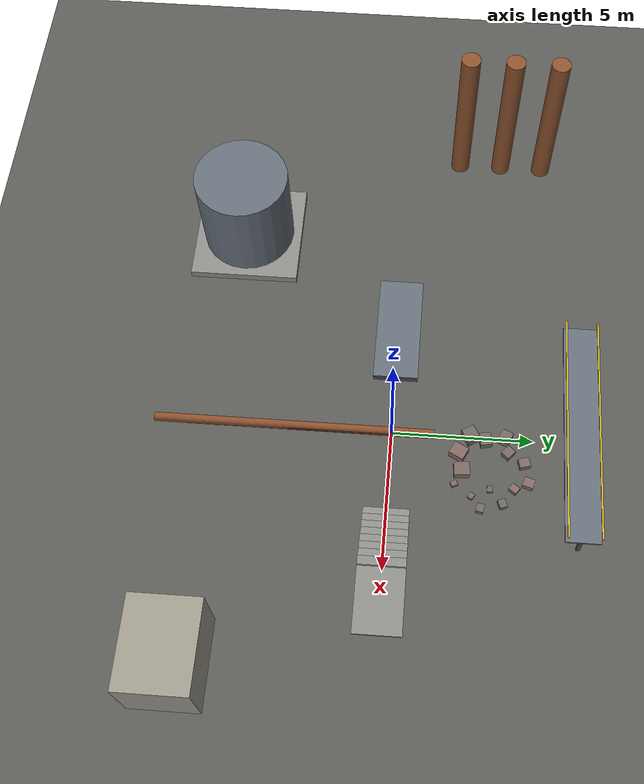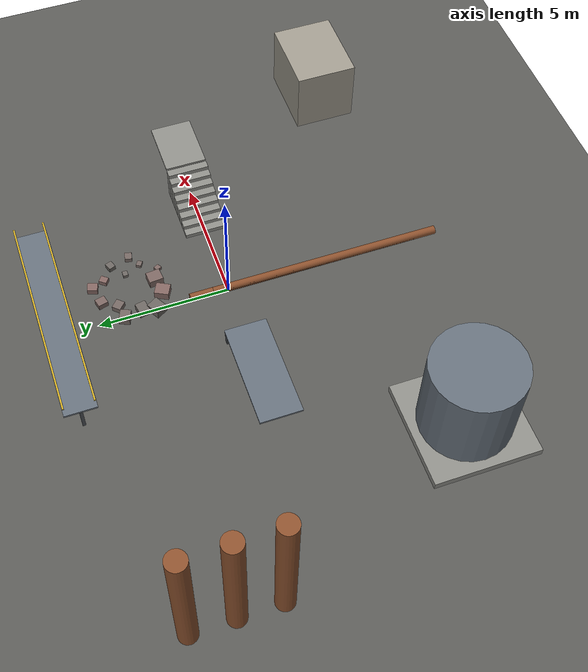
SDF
<?xml version="1.0" encoding="UTF-8"?>
<sdf version="1.9">
  <world name="agr_inspection">
    <plugin filename="gz-sim-physics-system" name="gz::sim::systems::Physics"/>
    <plugin filename="gz-sim-user-commands-system" name="gz::sim::systems::UserCommands"/>
    <plugin filename="gz-sim-scene-broadcaster-system" name="gz::sim::systems::SceneBroadcaster"/>
    <plugin filename="gz-sim-contact-system" name="gz::sim::systems::Contact"/>
    <plugin filename="gz-sim-imu-system" name="gz::sim::systems::Imu"/>
    <plugin filename="gz-sim-sensors-system" name="gz::sim::systems::Sensors">
      <render_engine>ogre2</render_engine>
    </plugin>

    <physics type="ode">
      <max_step_size>0.002</max_step_size>
      <real_time_factor>1.0</real_time_factor>
      <real_time_update_rate>500</real_time_update_rate>
    </physics>
    <gravity>0 0 -9.8</gravity>
    <scene>
      <grid>false</grid><shadows>true</shadows>
      <ambient>0.5 0.5 0.5 1</ambient><background>0.62 0.66 0.72 1</background>
    </scene>
    <model name="ground_plane"><static>true</static><link name="link">
      <collision name="c"><geometry><plane><normal>0 0 1</normal><size>1 1</size></plane></geometry>
        <surface><friction><ode><mu>1.0</mu><mu2>1.0</mu2></ode></friction></surface></collision>
      <visual name="v"><geometry><plane><normal>0 0 1</normal><size>200 200</size></plane></geometry>
        <material><ambient>0.35 0.35 0.34 1</ambient><diffuse>0.35 0.35 0.34 1</diffuse></material></visual>
    </link></model>
    <light name="sunUTC" type="directional">
      <pose>0 0 60 0 0 0</pose><cast_shadows>true</cast_shadows><intensity>1</intensity>
      <direction>0.3 0.5 -0.8</direction>
      <diffuse>0.95 0.95 0.92 1</diffuse><specular>0.25 0.25 0.25 1</specular>
      <attenuation><range>500</range><linear>0</linear><constant>1</constant><quadratic>0</quadratic></attenuation>
      <spot><inner_angle>0</inner_angle><outer_angle>0</outer_angle><falloff>0</falloff></spot>
    </light>
    <spherical_coordinates>
      <surface_model>EARTH_WGS84</surface_model><world_frame_orientation>ENU</world_frame_orientation>
      <latitude_deg>24.6877</latitude_deg><longitude_deg>46.7219</longitude_deg><elevation>600</elevation>
    </spherical_coordinates>
    <model name="step_0">
      <static>true</static>
      <pose>3.000 0.000 0.085 0 0 0.0000</pose>
      <link name="link">
        <collision name="c"><geometry><box><size>0.3 1.6 0.17</size></box></geometry>
          <surface><friction><ode><mu>1.0</mu><mu2>1.0</mu2></ode></friction></surface>
        </collision>
        <visual name="v"><geometry><box><size>0.3 1.6 0.17</size></box></geometry>
          <material><ambient>0.55 0.55 0.53 1</ambient><diffuse>0.55 0.55 0.53 1</diffuse></material>
        </visual>
      </link>
    </model>
    <model name="step_1">
      <static>true</static>
      <pose>3.300 0.000 0.170 0 0 0.0000</pose>
      <link name="link">
        <collision name="c"><geometry><box><size>0.3 1.6 0.34</size></box></geometry>
          <surface><friction><ode><mu>1.0</mu><mu2>1.0</mu2></ode></friction></surface>
        </collision>
        <visual name="v"><geometry><box><size>0.3 1.6 0.34</size></box></geometry>
          <material><ambient>0.55 0.55 0.53 1</ambient><diffuse>0.55 0.55 0.53 1</diffuse></material>
        </visual>
      </link>
    </model>
    <model name="step_2">
      <static>true</static>
      <pose>3.600 0.000 0.255 0 0 0.0000</pose>
      <link name="link">
        <collision name="c"><geometry><box><size>0.3 1.6 0.51</size></box></geometry>
          <surface><friction><ode><mu>1.0</mu><mu2>1.0</mu2></ode></friction></surface>
        </collision>
        <visual name="v"><geometry><box><size>0.3 1.6 0.51</size></box></geometry>
          <material><ambient>0.55 0.55 0.53 1</ambient><diffuse>0.55 0.55 0.53 1</diffuse></material>
        </visual>
      </link>
    </model>
    <model name="step_3">
      <static>true</static>
      <pose>3.900 0.000 0.340 0 0 0.0000</pose>
      <link name="link">
        <collision name="c"><geometry><box><size>0.3 1.6 0.68</size></box></geometry>
          <surface><friction><ode><mu>1.0</mu><mu2>1.0</mu2></ode></friction></surface>
        </collision>
        <visual name="v"><geometry><box><size>0.3 1.6 0.68</size></box></geometry>
          <material><ambient>0.55 0.55 0.53 1</ambient><diffuse>0.55 0.55 0.53 1</diffuse></material>
        </visual>
      </link>
    </model>
    <model name="step_4">
      <static>true</static>
      <pose>4.200 0.000 0.425 0 0 0.0000</pose>
      <link name="link">
        <collision name="c"><geometry><box><size>0.3 1.6 0.8500000000000001</size></box></geometry>
          <surface><friction><ode><mu>1.0</mu><mu2>1.0</mu2></ode></friction></surface>
        </collision>
        <visual name="v"><geometry><box><size>0.3 1.6 0.8500000000000001</size></box></geometry>
          <material><ambient>0.55 0.55 0.53 1</ambient><diffuse>0.55 0.55 0.53 1</diffuse></material>
        </visual>
      </link>
    </model>
    <model name="step_5">
      <static>true</static>
      <pose>4.500 0.000 0.510 0 0 0.0000</pose>
      <link name="link">
        <collision name="c"><geometry><box><size>0.3 1.6 1.02</size></box></geometry>
          <surface><friction><ode><mu>1.0</mu><mu2>1.0</mu2></ode></friction></surface>
        </collision>
        <visual name="v"><geometry><box><size>0.3 1.6 1.02</size></box></geometry>
          <material><ambient>0.55 0.55 0.53 1</ambient><diffuse>0.55 0.55 0.53 1</diffuse></material>
        </visual>
      </link>
    </model>
    <model name="step_6">
      <static>true</static>
      <pose>4.800 0.000 0.595 0 0 0.0000</pose>
      <link name="link">
        <collision name="c"><geometry><box><size>0.3 1.6 1.1900000000000002</size></box></geometry>
          <surface><friction><ode><mu>1.0</mu><mu2>1.0</mu2></ode></friction></surface>
        </collision>
        <visual name="v"><geometry><box><size>0.3 1.6 1.1900000000000002</size></box></geometry>
          <material><ambient>0.55 0.55 0.53 1</ambient><diffuse>0.55 0.55 0.53 1</diffuse></material>
        </visual>
      </link>
    </model>
    <model name="step_7">
      <static>true</static>
      <pose>5.100 0.000 0.680 0 0 0.0000</pose>
      <link name="link">
        <collision name="c"><geometry><box><size>0.3 1.6 1.36</size></box></geometry>
          <surface><friction><ode><mu>1.0</mu><mu2>1.0</mu2></ode></friction></surface>
        </collision>
        <visual name="v"><geometry><box><size>0.3 1.6 1.36</size></box></geometry>
          <material><ambient>0.55 0.55 0.53 1</ambient><diffuse>0.55 0.55 0.53 1</diffuse></material>
        </visual>
      </link>
    </model>
    <model name="landing">
      <static>true</static>
      <pose>6.400 0.000 1.360 0 0 0.0000</pose>
      <link name="link">
        <collision name="c"><geometry><box><size>2.2 1.6 0.08</size></box></geometry>
          <surface><friction><ode><mu>1.0</mu><mu2>1.0</mu2></ode></friction></surface>
        </collision>
        <visual name="v"><geometry><box><size>2.2 1.6 0.08</size></box></geometry>
          <material><ambient>0.55 0.55 0.53 1</ambient><diffuse>0.55 0.55 0.53 1</diffuse></material>
        </visual>
      </link>
    </model>
    <model name="ramp">
      <static>true</static>
      <pose>-4.000 0.000 0.450 0 0 0.0000</pose>
      <link name="link">
        <collision name="c"><geometry><box><size>4.0 1.6 0.08</size></box></geometry>
          <surface><friction><ode><mu>1.0</mu><mu2>1.0</mu2></ode></friction></surface>
        </collision>
        <visual name="v"><geometry><box><size>4.0 1.6 0.08</size></box></geometry>
          <material><ambient>0.4 0.44 0.48 1</ambient><diffuse>0.4 0.44 0.48 1</diffuse></material>
        </visual>
      </link>
    </model>
    <model name="ramp_prop">
      <static>true</static>
      <pose>-2.200 0.000 0.220 0 0 0.0000</pose>
      <link name="link">
        <collision name="c"><geometry><box><size>0.2 1.6 0.45</size></box></geometry>
          <surface><friction><ode><mu>1.0</mu><mu2>1.0</mu2></ode></friction></surface>
        </collision>
        <visual name="v"><geometry><box><size>0.2 1.6 0.45</size></box></geometry>
          <material><ambient>0.28 0.3 0.32 1</ambient><diffuse>0.28 0.3 0.32 1</diffuse></material>
        </visual>
      </link>
    </model>
    <model name="rubble_0">
      <static>true</static>
      <pose>1.900 3.500 0.070 0 0 0.0000</pose>
      <link name="link">
        <collision name="c"><geometry><box><size>0.22400000000000003 0.196 0.14</size></box></geometry>
          <surface><friction><ode><mu>1.0</mu><mu2>1.0</mu2></ode></friction></surface>
        </collision>
        <visual name="v"><geometry><box><size>0.22400000000000003 0.196 0.14</size></box></geometry>
          <material><ambient>0.42 0.4 0.38 1</ambient><diffuse>0.42 0.4 0.38 1</diffuse></material>
        </visual>
      </link>
    </model>
    <model name="rubble_1">
      <static>true</static>
      <pose>0.529 4.115 0.120 0 0 2.4000</pose>
      <link name="link">
        <collision name="c"><geometry><box><size>0.38400000000000006 0.336 0.24000000000000002</size></box></geometry>
          <surface><friction><ode><mu>1.0</mu><mu2>1.0</mu2></ode></friction></surface>
        </collision>
        <visual name="v"><geometry><box><size>0.38400000000000006 0.336 0.24000000000000002</size></box></geometry>
          <material><ambient>0.44999999999999996 0.4 0.38 1</ambient><diffuse>0.44999999999999996 0.4 0.38 1</diffuse></material>
        </visual>
      </link>
    </model>
    <model name="rubble_2">
      <static>true</static>
      <pose>1.287 2.507 0.170 0 0 4.7999</pose>
      <link name="link">
        <collision name="c"><geometry><box><size>0.544 0.476 0.34</size></box></geometry>
          <surface><friction><ode><mu>1.0</mu><mu2>1.0</mu2></ode></friction></surface>
        </collision>
        <visual name="v"><geometry><box><size>0.544 0.476 0.34</size></box></geometry>
          <material><ambient>0.48 0.4 0.38 1</ambient><diffuse>0.48 0.4 0.38 1</diffuse></material>
        </visual>
      </link>
    </model>
    <model name="rubble_3">
      <static>true</static>
      <pose>1.847 4.344 0.095 0 0 7.1999</pose>
      <link name="link">
        <collision name="c"><geometry><box><size>0.30400000000000005 0.26599999999999996 0.19</size></box></geometry>
          <surface><friction><ode><mu>1.0</mu><mu2>1.0</mu2></ode></friction></surface>
        </collision>
        <visual name="v"><geometry><box><size>0.30400000000000005 0.26599999999999996 0.19</size></box></geometry>
          <material><ambient>0.51 0.4 0.38 1</ambient><diffuse>0.51 0.4 0.38 1</diffuse></material>
        </visual>
      </link>
    </model>
    <model name="rubble_4">
      <static>true</static>
      <pose>0.097 3.305 0.145 0 0 9.5999</pose>
      <link name="link">
        <collision name="c"><geometry><box><size>0.4640000000000001 0.406 0.29000000000000004</size></box></geometry>
          <surface><friction><ode><mu>1.0</mu><mu2>1.0</mu2></ode></friction></surface>
        </collision>
        <visual name="v"><geometry><box><size>0.4640000000000001 0.406 0.29000000000000004</size></box></geometry>
          <material><ambient>0.42 0.4 0.38 1</ambient><diffuse>0.42 0.4 0.38 1</diffuse></material>
        </visual>
      </link>
    </model>
    <model name="rubble_5">
      <static>true</static>
      <pose>2.187 2.872 0.070 0 0 11.9998</pose>
      <link name="link">
        <collision name="c"><geometry><box><size>0.22400000000000003 0.196 0.14</size></box></geometry>
          <surface><friction><ode><mu>1.0</mu><mu2>1.0</mu2></ode></friction></surface>
        </collision>
        <visual name="v"><geometry><box><size>0.22400000000000003 0.196 0.14</size></box></geometry>
          <material><ambient>0.44999999999999996 0.4 0.38 1</ambient><diffuse>0.44999999999999996 0.4 0.38 1</diffuse></material>
        </visual>
      </link>
    </model>
    <model name="rubble_6">
      <static>true</static>
      <pose>0.885 4.673 0.120 0 0 14.3998</pose>
      <link name="link">
        <collision name="c"><geometry><box><size>0.38400000000000006 0.336 0.24000000000000002</size></box></geometry>
          <surface><friction><ode><mu>1.0</mu><mu2>1.0</mu2></ode></friction></surface>
        </collision>
        <visual name="v"><geometry><box><size>0.38400000000000006 0.336 0.24000000000000002</size></box></geometry>
          <material><ambient>0.48 0.4 0.38 1</ambient><diffuse>0.48 0.4 0.38 1</diffuse></material>
        </visual>
      </link>
    </model>
    <model name="rubble_7">
      <static>true</static>
      <pose>0.621 2.386 0.170 0 0 16.7997</pose>
      <link name="link">
        <collision name="c"><geometry><box><size>0.544 0.476 0.34</size></box></geometry>
          <surface><friction><ode><mu>1.0</mu><mu2>1.0</mu2></ode></friction></surface>
        </collision>
        <visual name="v"><geometry><box><size>0.544 0.476 0.34</size></box></geometry>
          <material><ambient>0.51 0.4 0.38 1</ambient><diffuse>0.51 0.4 0.38 1</diffuse></material>
        </visual>
      </link>
    </model>
    <model name="rubble_8">
      <static>true</static>
      <pose>2.415 3.944 0.095 0 0 19.1997</pose>
      <link name="link">
        <collision name="c"><geometry><box><size>0.30400000000000005 0.26599999999999996 0.19</size></box></geometry>
          <surface><friction><ode><mu>1.0</mu><mu2>1.0</mu2></ode></friction></surface>
        </collision>
        <visual name="v"><geometry><box><size>0.30400000000000005 0.26599999999999996 0.19</size></box></geometry>
          <material><ambient>0.42 0.4 0.38 1</ambient><diffuse>0.42 0.4 0.38 1</diffuse></material>
        </visual>
      </link>
    </model>
    <model name="rubble_9">
      <static>true</static>
      <pose>-0.029 4.007 0.145 0 0 21.5997</pose>
      <link name="link">
        <collision name="c"><geometry><box><size>0.4640000000000001 0.406 0.29000000000000004</size></box></geometry>
          <surface><friction><ode><mu>1.0</mu><mu2>1.0</mu2></ode></friction></surface>
        </collision>
        <visual name="v"><geometry><box><size>0.4640000000000001 0.406 0.29000000000000004</size></box></geometry>
          <material><ambient>0.44999999999999996 0.4 0.38 1</ambient><diffuse>0.44999999999999996 0.4 0.38 1</diffuse></material>
        </visual>
      </link>
    </model>
    <model name="rubble_10">
      <static>true</static>
      <pose>1.778 2.265 0.070 0 0 23.9996</pose>
      <link name="link">
        <collision name="c"><geometry><box><size>0.22400000000000003 0.196 0.14</size></box></geometry>
          <surface><friction><ode><mu>1.0</mu><mu2>1.0</mu2></ode></friction></surface>
        </collision>
        <visual name="v"><geometry><box><size>0.22400000000000003 0.196 0.14</size></box></geometry>
          <material><ambient>0.48 0.4 0.38 1</ambient><diffuse>0.48 0.4 0.38 1</diffuse></material>
        </visual>
      </link>
    </model>
    <model name="rubble_11">
      <static>true</static>
      <pose>1.618 4.832 0.120 0 0 26.3996</pose>
      <link name="link">
        <collision name="c"><geometry><box><size>0.38400000000000006 0.336 0.24000000000000002</size></box></geometry>
          <surface><friction><ode><mu>1.0</mu><mu2>1.0</mu2></ode></friction></surface>
        </collision>
        <visual name="v"><geometry><box><size>0.38400000000000006 0.336 0.24000000000000002</size></box></geometry>
          <material><ambient>0.51 0.4 0.38 1</ambient><diffuse>0.51 0.4 0.38 1</diffuse></material>
        </visual>
      </link>
    </model>
    <model name="rubble_12">
      <static>true</static>
      <pose>-0.035 2.784 0.170 0 0 28.7996</pose>
      <link name="link">
        <collision name="c"><geometry><box><size>0.544 0.476 0.34</size></box></geometry>
          <surface><friction><ode><mu>1.0</mu><mu2>1.0</mu2></ode></friction></surface>
        </collision>
        <visual name="v"><geometry><box><size>0.544 0.476 0.34</size></box></geometry>
          <material><ambient>0.42 0.4 0.38 1</ambient><diffuse>0.42 0.4 0.38 1</diffuse></material>
        </visual>
      </link>
    </model>
    <model name="rubble_13">
      <static>true</static>
      <pose>2.623 3.187 0.095 0 0 31.1995</pose>
      <link name="link">
        <collision name="c"><geometry><box><size>0.30400000000000005 0.26599999999999996 0.19</size></box></geometry>
          <surface><friction><ode><mu>1.0</mu><mu2>1.0</mu2></ode></friction></surface>
        </collision>
        <visual name="v"><geometry><box><size>0.30400000000000005 0.26599999999999996 0.19</size></box></geometry>
          <material><ambient>0.44999999999999996 0.4 0.38 1</ambient><diffuse>0.44999999999999996 0.4 0.38 1</diffuse></material>
        </visual>
      </link>
    </model>
    <model name="pipe_0">
      <static>true</static>
      <pose>0.000 -3.000 0.160 1.5708 0 0</pose>
      <link name="link">
        <collision name="c"><geometry><cylinder><radius>0.16</radius><length>9.0</length></cylinder></geometry></collision>
        <visual name="v"><geometry><cylinder><radius>0.16</radius><length>9.0</length></cylinder></geometry>
          <material><ambient>0.55 0.32 0.18 1</ambient><diffuse>0.55 0.32 0.18 1</diffuse></material>
        </visual>
      </link>
    </model>
    <model name="pipe_1">
      <static>true</static>
      <pose>0.000 -3.900 0.160 1.5708 0 0</pose>
      <link name="link">
        <collision name="c"><geometry><cylinder><radius>0.16</radius><length>9.0</length></cylinder></geometry></collision>
        <visual name="v"><geometry><cylinder><radius>0.16</radius><length>9.0</length></cylinder></geometry>
          <material><ambient>0.55 0.32 0.18 1</ambient><diffuse>0.55 0.32 0.18 1</diffuse></material>
        </visual>
      </link>
    </model>
    <model name="catwalk">
      <static>true</static>
      <pose>0.000 6.500 1.200 0 0 0.0000</pose>
      <link name="link">
        <collision name="c"><geometry><box><size>8.0 1.2 0.08</size></box></geometry>
          <surface><friction><ode><mu>1.0</mu><mu2>1.0</mu2></ode></friction></surface>
        </collision>
        <visual name="v"><geometry><box><size>8.0 1.2 0.08</size></box></geometry>
          <material><ambient>0.4 0.44 0.48 1</ambient><diffuse>0.4 0.44 0.48 1</diffuse></material>
        </visual>
      </link>
    </model>
    <model name="rail_0">
      <static>true</static>
      <pose>0.000 5.950 1.700 0 0 0.0000</pose>
      <link name="link">
        <collision name="c"><geometry><box><size>8.0 0.06 0.06</size></box></geometry>
          <surface><friction><ode><mu>1.0</mu><mu2>1.0</mu2></ode></friction></surface>
        </collision>
        <visual name="v"><geometry><box><size>8.0 0.06 0.06</size></box></geometry>
          <material><ambient>0.85 0.7 0.15 1</ambient><diffuse>0.85 0.7 0.15 1</diffuse></material>
        </visual>
      </link>
    </model>
    <model name="rail_1">
      <static>true</static>
      <pose>0.000 7.050 1.700 0 0 0.0000</pose>
      <link name="link">
        <collision name="c"><geometry><box><size>8.0 0.06 0.06</size></box></geometry>
          <surface><friction><ode><mu>1.0</mu><mu2>1.0</mu2></ode></friction></surface>
        </collision>
        <visual name="v"><geometry><box><size>8.0 0.06 0.06</size></box></geometry>
          <material><ambient>0.85 0.7 0.15 1</ambient><diffuse>0.85 0.7 0.15 1</diffuse></material>
        </visual>
      </link>
    </model>
    <model name="catwalk_leg_0">
      <static>true</static>
      <pose>-3.800 6.500 0.600 0 0 0.0000</pose>
      <link name="link">
        <collision name="c"><geometry><box><size>0.12 0.12 1.2</size></box></geometry>
          <surface><friction><ode><mu>1.0</mu><mu2>1.0</mu2></ode></friction></surface>
        </collision>
        <visual name="v"><geometry><box><size>0.12 0.12 1.2</size></box></geometry>
          <material><ambient>0.28 0.3 0.32 1</ambient><diffuse>0.28 0.3 0.32 1</diffuse></material>
        </visual>
      </link>
    </model>
    <model name="catwalk_leg_1">
      <static>true</static>
      <pose>0.000 6.500 0.600 0 0 0.0000</pose>
      <link name="link">
        <collision name="c"><geometry><box><size>0.12 0.12 1.2</size></box></geometry>
          <surface><friction><ode><mu>1.0</mu><mu2>1.0</mu2></ode></friction></surface>
        </collision>
        <visual name="v"><geometry><box><size>0.12 0.12 1.2</size></box></geometry>
          <material><ambient>0.28 0.3 0.32 1</ambient><diffuse>0.28 0.3 0.32 1</diffuse></material>
        </visual>
      </link>
    </model>
    <model name="catwalk_leg_2">
      <static>true</static>
      <pose>3.800 6.500 0.600 0 0 0.0000</pose>
      <link name="link">
        <collision name="c"><geometry><box><size>0.12 0.12 1.2</size></box></geometry>
          <surface><friction><ode><mu>1.0</mu><mu2>1.0</mu2></ode></friction></surface>
        </collision>
        <visual name="v"><geometry><box><size>0.12 0.12 1.2</size></box></geometry>
          <material><ambient>0.28 0.3 0.32 1</ambient><diffuse>0.28 0.3 0.32 1</diffuse></material>
        </visual>
      </link>
    </model>
    <model name="tank_base">
      <static>true</static>
      <pose>-8.000 -6.000 0.150 0 0 0.0000</pose>
      <link name="link">
        <collision name="c"><geometry><box><size>4.0 4.0 0.3</size></box></geometry>
          <surface><friction><ode><mu>1.0</mu><mu2>1.0</mu2></ode></friction></surface>
        </collision>
        <visual name="v"><geometry><box><size>4.0 4.0 0.3</size></box></geometry>
          <material><ambient>0.55 0.55 0.53 1</ambient><diffuse>0.55 0.55 0.53 1</diffuse></material>
        </visual>
      </link>
    </model>
    <model name="tank">
      <static>true</static>
      <pose>-8.000 -6.000 2.000 0 0 0</pose>
      <link name="link">
        <collision name="c"><geometry><cylinder><radius>1.7</radius><length>3.4</length></cylinder></geometry></collision>
        <visual name="v"><geometry><cylinder><radius>1.7</radius><length>3.4</length></cylinder></geometry>
          <material><ambient>0.4 0.44 0.48 1</ambient><diffuse>0.4 0.44 0.48 1</diffuse></material>
        </visual>
      </link>
    </model>
    <model name="control_hut">
      <static>true</static>
      <pose>8.500 -6.500 1.300 0 0 0.0000</pose>
      <link name="link">
        <collision name="c"><geometry><box><size>3.0 2.4 2.6</size></box></geometry>
          <surface><friction><ode><mu>1.0</mu><mu2>1.0</mu2></ode></friction></surface>
        </collision>
        <visual name="v"><geometry><box><size>3.0 2.4 2.6</size></box></geometry>
          <material><ambient>0.62 0.6 0.55 1</ambient><diffuse>0.62 0.6 0.55 1</diffuse></material>
        </visual>
      </link>
    </model>
    <model name="stack_0">
      <static>true</static>
      <pose>-12.000 2.000 3.000 0 0 0</pose>
      <link name="link">
        <collision name="c"><geometry><cylinder><radius>0.35</radius><length>6.0</length></cylinder></geometry></collision>
        <visual name="v"><geometry><cylinder><radius>0.35</radius><length>6.0</length></cylinder></geometry>
          <material><ambient>0.55 0.32 0.18 1</ambient><diffuse>0.55 0.32 0.18 1</diffuse></material>
        </visual>
      </link>
    </model>
    <model name="stack_1">
      <static>true</static>
      <pose>-12.000 3.600 3.000 0 0 0</pose>
      <link name="link">
        <collision name="c"><geometry><cylinder><radius>0.35</radius><length>6.0</length></cylinder></geometry></collision>
        <visual name="v"><geometry><cylinder><radius>0.35</radius><length>6.0</length></cylinder></geometry>
          <material><ambient>0.55 0.32 0.18 1</ambient><diffuse>0.55 0.32 0.18 1</diffuse></material>
        </visual>
      </link>
    </model>
    <model name="stack_2">
      <static>true</static>
      <pose>-12.000 5.200 3.000 0 0 0</pose>
      <link name="link">
        <collision name="c"><geometry><cylinder><radius>0.35</radius><length>6.0</length></cylinder></geometry></collision>
        <visual name="v"><geometry><cylinder><radius>0.35</radius><length>6.0</length></cylinder></geometry>
          <material><ambient>0.55 0.32 0.18 1</ambient><diffuse>0.55 0.32 0.18 1</diffuse></material>
        </visual>
      </link>
    </model>
  </world>
</sdf>
